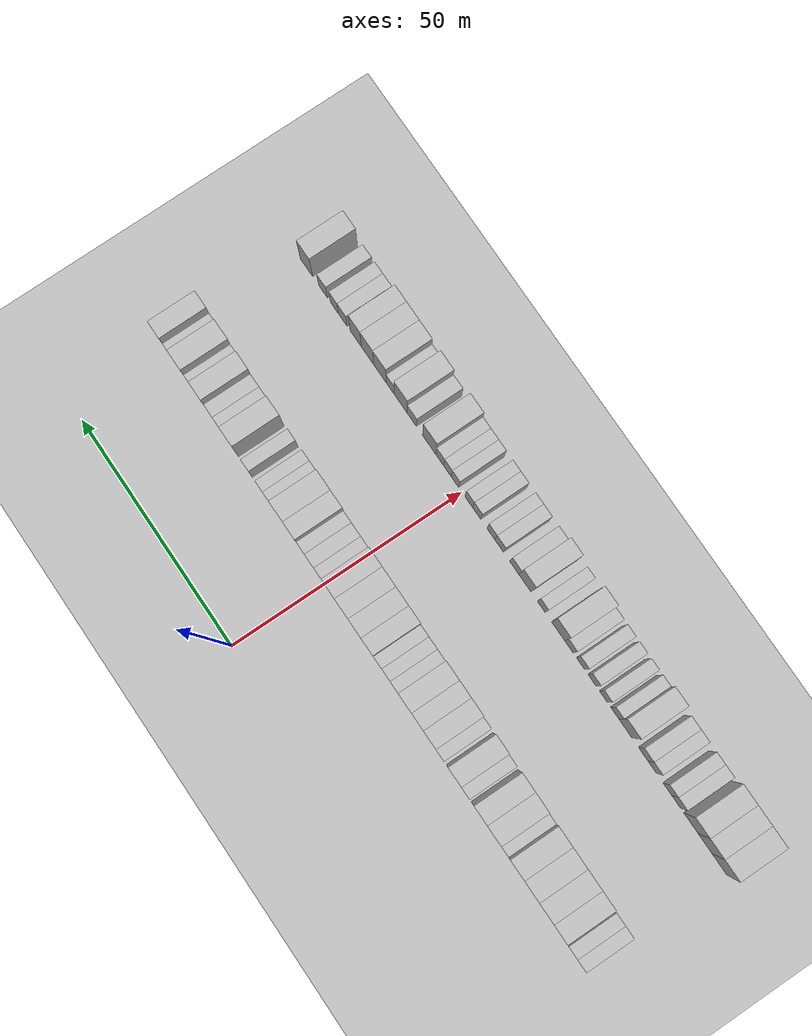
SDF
<sdf version="1.6">
 <world name="default">
  <include><name>ground_plane_1</name><uri>model://HANNAS_ground_plane</uri></include>
  <include>
   <name>ground_plane_2</name>
   <uri>model://HANNAS_ground_plane</uri>
   <pose>100 0 0  0 0 0</pose>
  </include>
  <model name="building_38">
   <static>1</static>
   <pose>25.0000 -79.5354 0 0.000000 0.000000 0.000000</pose>
   <link name="link">
    <pose>0 0 3.00 0 0 0</pose>
    <collision name="collision"><geometry><box><size>10.0000 2.6020 6.0000</size></box></geometry></collision>
    <visual name="visual">
     <cast_shadows>0</cast_shadows>
     <geometry><box><size>10.0000 2.6020 6.0000</size></box></geometry>
     <material>
      <script>
       <uri>model://HANNAS_wall/materials/scripts</uri>
       <uri>model://HANNAS_wall/materials/textures</uri>
       <name>vrc/HANNAS_wall</name>
      </script>
     </material>
    </visual>
   </link>
  </model>
  <model name="building_39">
   <static>1</static>
   <pose>25.0000 -76.9047 0 0.000000 0.000000 0.000000</pose>
   <link name="link">
    <pose>0 0 3.00 0 0 0</pose>
    <collision name="collision"><geometry><box><size>10.0000 2.6593 6.0000</size></box></geometry></collision>
    <visual name="visual">
     <cast_shadows>0</cast_shadows>
     <geometry><box><size>10.0000 2.6593 6.0000</size></box></geometry>
     <material>
      <script>
       <uri>model://HANNAS_wall/materials/scripts</uri>
       <uri>model://HANNAS_wall/materials/textures</uri>
       <name>vrc/HANNAS_wall</name>
      </script>
     </material>
    </visual>
   </link>
  </model>
  <model name="building_40">
   <static>1</static>
   <pose>25.0000 -72.5668 0 0.000000 0.000000 0.000000</pose>
   <link name="link">
    <pose>0 0 4.50 0 0 0</pose>
    <collision name="collision"><geometry><box><size>10.0000 4.0165 9.0000</size></box></geometry></collision>
    <visual name="visual">
     <cast_shadows>0</cast_shadows>
     <geometry><box><size>10.0000 4.0165 9.0000</size></box></geometry>
     <material>
      <script>
       <uri>model://HANNAS_wall/materials/scripts</uri>
       <uri>model://HANNAS_wall/materials/textures</uri>
       <name>vrc/HANNAS_wall</name>
      </script>
     </material>
    </visual>
   </link>
  </model>
  <model name="building_41">
   <static>1</static>
   <pose>25.0000 -68.4101 0 0.000000 0.000000 0.000000</pose>
   <link name="link">
    <pose>0 0 4.50 0 0 0</pose>
    <collision name="collision"><geometry><box><size>10.0000 4.2969 9.0000</size></box></geometry></collision>
    <visual name="visual">
     <cast_shadows>0</cast_shadows>
     <geometry><box><size>10.0000 4.2969 9.0000</size></box></geometry>
     <material>
      <script>
       <uri>model://HANNAS_wall/materials/scripts</uri>
       <uri>model://HANNAS_wall/materials/textures</uri>
       <name>vrc/HANNAS_wall</name>
      </script>
     </material>
    </visual>
   </link>
  </model>
  <model name="building_42">
   <static>1</static>
   <pose>25.0000 -64.0627 0 0.000000 0.000000 0.000000</pose>
   <link name="link">
    <pose>0 0 4.50 0 0 0</pose>
    <collision name="collision"><geometry><box><size>10.0000 4.3979 9.0000</size></box></geometry></collision>
    <visual name="visual">
     <cast_shadows>0</cast_shadows>
     <geometry><box><size>10.0000 4.3979 9.0000</size></box></geometry>
     <material>
      <script>
       <uri>model://HANNAS_wall/materials/scripts</uri>
       <uri>model://HANNAS_wall/materials/textures</uri>
       <name>vrc/HANNAS_wall</name>
      </script>
     </material>
    </visual>
   </link>
  </model>
  <model name="building_43">
   <static>1</static>
   <pose>25.0000 -59.7352 0 0.000000 0.000000 0.000000</pose>
   <link name="link">
    <pose>0 0 4.50 0 0 0</pose>
    <collision name="collision"><geometry><box><size>10.0000 4.2573 9.0000</size></box></geometry></collision>
    <visual name="visual">
     <cast_shadows>0</cast_shadows>
     <geometry><box><size>10.0000 4.2573 9.0000</size></box></geometry>
     <material>
      <script>
       <uri>model://HANNAS_wall/materials/scripts</uri>
       <uri>model://HANNAS_wall/materials/textures</uri>
       <name>vrc/HANNAS_wall</name>
      </script>
     </material>
    </visual>
   </link>
  </model>
  <model name="building_44">
   <static>1</static>
   <pose>25.0000 -56.2948 0 0.000000 0.000000 0.000000</pose>
   <link name="link">
    <pose>0 0 3.00 0 0 0</pose>
    <collision name="collision"><geometry><box><size>10.0000 2.6233 6.0000</size></box></geometry></collision>
    <visual name="visual">
     <cast_shadows>0</cast_shadows>
     <geometry><box><size>10.0000 2.6233 6.0000</size></box></geometry>
     <material>
      <script>
       <uri>model://HANNAS_wall/materials/scripts</uri>
       <uri>model://HANNAS_wall/materials/textures</uri>
       <name>vrc/HANNAS_wall</name>
      </script>
     </material>
    </visual>
   </link>
  </model>
  <model name="building_45">
   <static>1</static>
   <pose>25.0000 -52.8796 0 0.000000 0.000000 0.000000</pose>
   <link name="link">
    <pose>0 0 4.50 0 0 0</pose>
    <collision name="collision"><geometry><box><size>10.0000 4.2071 9.0000</size></box></geometry></collision>
    <visual name="visual">
     <cast_shadows>0</cast_shadows>
     <geometry><box><size>10.0000 4.2071 9.0000</size></box></geometry>
     <material>
      <script>
       <uri>model://HANNAS_wall/materials/scripts</uri>
       <uri>model://HANNAS_wall/materials/textures</uri>
       <name>vrc/HANNAS_wall</name>
      </script>
     </material>
    </visual>
   </link>
  </model>
  <model name="building_46">
   <static>1</static>
   <pose>25.0000 -48.7759 0 0.000000 0.000000 0.000000</pose>
   <link name="link">
    <pose>0 0 4.50 0 0 0</pose>
    <collision name="collision"><geometry><box><size>10.0000 4.0003 9.0000</size></box></geometry></collision>
    <visual name="visual">
     <cast_shadows>0</cast_shadows>
     <geometry><box><size>10.0000 4.0003 9.0000</size></box></geometry>
     <material>
      <script>
       <uri>model://HANNAS_wall/materials/scripts</uri>
       <uri>model://HANNAS_wall/materials/textures</uri>
       <name>vrc/HANNAS_wall</name>
      </script>
     </material>
    </visual>
   </link>
  </model>
  <model name="building_47">
   <static>1</static>
   <pose>25.0000 -44.3915 0 0.000000 0.000000 0.000000</pose>
   <link name="link">
    <pose>0 0 3.00 0 0 0</pose>
    <collision name="collision"><geometry><box><size>10.0000 2.7683 6.0000</size></box></geometry></collision>
    <visual name="visual">
     <cast_shadows>0</cast_shadows>
     <geometry><box><size>10.0000 2.7683 6.0000</size></box></geometry>
     <material>
      <script>
       <uri>model://HANNAS_wall/materials/scripts</uri>
       <uri>model://HANNAS_wall/materials/textures</uri>
       <name>vrc/HANNAS_wall</name>
      </script>
     </material>
    </visual>
   </link>
  </model>
  <model name="building_48">
   <static>1</static>
   <pose>25.0000 -40.9824 0 0.000000 0.000000 0.000000</pose>
   <link name="link">
    <pose>0 0 4.50 0 0 0</pose>
    <collision name="collision"><geometry><box><size>10.0000 4.0500 9.0000</size></box></geometry></collision>
    <visual name="visual">
     <cast_shadows>0</cast_shadows>
     <geometry><box><size>10.0000 4.0500 9.0000</size></box></geometry>
     <material>
      <script>
       <uri>model://HANNAS_wall/materials/scripts</uri>
       <uri>model://HANNAS_wall/materials/textures</uri>
       <name>vrc/HANNAS_wall</name>
      </script>
     </material>
    </visual>
   </link>
  </model>
  <model name="building_49">
   <static>1</static>
   <pose>25.0000 -36.6390 0 0.000000 0.000000 0.000000</pose>
   <link name="link">
    <pose>0 0 3.00 0 0 0</pose>
    <collision name="collision"><geometry><box><size>10.0000 2.6367 6.0000</size></box></geometry></collision>
    <visual name="visual">
     <cast_shadows>0</cast_shadows>
     <geometry><box><size>10.0000 2.6367 6.0000</size></box></geometry>
     <material>
      <script>
       <uri>model://HANNAS_wall/materials/scripts</uri>
       <uri>model://HANNAS_wall/materials/textures</uri>
       <name>vrc/HANNAS_wall</name>
      </script>
     </material>
    </visual>
   </link>
  </model>
  <model name="building_50">
   <static>1</static>
   <pose>25.0000 -33.4120 0 0.000000 0.000000 0.000000</pose>
   <link name="link">
    <pose>0 0 4.50 0 0 0</pose>
    <collision name="collision"><geometry><box><size>10.0000 3.8174 9.0000</size></box></geometry></collision>
    <visual name="visual">
     <cast_shadows>0</cast_shadows>
     <geometry><box><size>10.0000 3.8174 9.0000</size></box></geometry>
     <material>
      <script>
       <uri>model://HANNAS_wall/materials/scripts</uri>
       <uri>model://HANNAS_wall/materials/textures</uri>
       <name>vrc/HANNAS_wall</name>
      </script>
     </material>
    </visual>
   </link>
  </model>
  <model name="building_51">
   <static>1</static>
   <pose>25.0000 -29.6957 0 0.000000 0.000000 0.000000</pose>
   <link name="link">
    <pose>0 0 4.50 0 0 0</pose>
    <collision name="collision"><geometry><box><size>10.0000 3.6152 9.0000</size></box></geometry></collision>
    <visual name="visual">
     <cast_shadows>0</cast_shadows>
     <geometry><box><size>10.0000 3.6152 9.0000</size></box></geometry>
     <material>
      <script>
       <uri>model://HANNAS_wall/materials/scripts</uri>
       <uri>model://HANNAS_wall/materials/textures</uri>
       <name>vrc/HANNAS_wall</name>
      </script>
     </material>
    </visual>
   </link>
  </model>
  <model name="building_52">
   <static>1</static>
   <pose>25.0000 -25.8387 0 0.000000 0.000000 0.000000</pose>
   <link name="link">
    <pose>0 0 4.50 0 0 0</pose>
    <collision name="collision"><geometry><box><size>10.0000 4.0989 9.0000</size></box></geometry></collision>
    <visual name="visual">
     <cast_shadows>0</cast_shadows>
     <geometry><box><size>10.0000 4.0989 9.0000</size></box></geometry>
     <material>
      <script>
       <uri>model://HANNAS_wall/materials/scripts</uri>
       <uri>model://HANNAS_wall/materials/textures</uri>
       <name>vrc/HANNAS_wall</name>
      </script>
     </material>
    </visual>
   </link>
  </model>
  <model name="building_53">
   <static>1</static>
   <pose>25.0000 -22.5500 0 0.000000 0.000000 0.000000</pose>
   <link name="link">
    <pose>0 0 3.00 0 0 0</pose>
    <collision name="collision"><geometry><box><size>10.0000 2.4784 6.0000</size></box></geometry></collision>
    <visual name="visual">
     <cast_shadows>0</cast_shadows>
     <geometry><box><size>10.0000 2.4784 6.0000</size></box></geometry>
     <material>
      <script>
       <uri>model://HANNAS_wall/materials/scripts</uri>
       <uri>model://HANNAS_wall/materials/textures</uri>
       <name>vrc/HANNAS_wall</name>
      </script>
     </material>
    </visual>
   </link>
  </model>
  <model name="building_54">
   <static>1</static>
   <pose>25.0000 -19.9848 0 0.000000 0.000000 0.000000</pose>
   <link name="link">
    <pose>0 0 3.00 0 0 0</pose>
    <collision name="collision"><geometry><box><size>10.0000 2.6522 6.0000</size></box></geometry></collision>
    <visual name="visual">
     <cast_shadows>0</cast_shadows>
     <geometry><box><size>10.0000 2.6522 6.0000</size></box></geometry>
     <material>
      <script>
       <uri>model://HANNAS_wall/materials/scripts</uri>
       <uri>model://HANNAS_wall/materials/textures</uri>
       <name>vrc/HANNAS_wall</name>
      </script>
     </material>
    </visual>
   </link>
  </model>
  <model name="building_55">
   <static>1</static>
   <pose>25.0000 -17.3643 0 0.000000 0.000000 0.000000</pose>
   <link name="link">
    <pose>0 0 3.00 0 0 0</pose>
    <collision name="collision"><geometry><box><size>10.0000 2.5887 6.0000</size></box></geometry></collision>
    <visual name="visual">
     <cast_shadows>0</cast_shadows>
     <geometry><box><size>10.0000 2.5887 6.0000</size></box></geometry>
     <material>
      <script>
       <uri>model://HANNAS_wall/materials/scripts</uri>
       <uri>model://HANNAS_wall/materials/textures</uri>
       <name>vrc/HANNAS_wall</name>
      </script>
     </material>
    </visual>
   </link>
  </model>
  <model name="building_56">
   <static>1</static>
   <pose>25.0000 -14.2128 0 0.000000 0.000000 0.000000</pose>
   <link name="link">
    <pose>0 0 4.50 0 0 0</pose>
    <collision name="collision"><geometry><box><size>10.0000 3.7143 9.0000</size></box></geometry></collision>
    <visual name="visual">
     <cast_shadows>0</cast_shadows>
     <geometry><box><size>10.0000 3.7143 9.0000</size></box></geometry>
     <material>
      <script>
       <uri>model://HANNAS_wall/materials/scripts</uri>
       <uri>model://HANNAS_wall/materials/textures</uri>
       <name>vrc/HANNAS_wall</name>
      </script>
     </material>
    </visual>
   </link>
  </model>
  <model name="building_57">
   <static>1</static>
   <pose>25.0000 -10.3668 0 0.000000 0.000000 0.000000</pose>
   <link name="link">
    <pose>0 0 4.50 0 0 0</pose>
    <collision name="collision"><geometry><box><size>10.0000 3.9776 9.0000</size></box></geometry></collision>
    <visual name="visual">
     <cast_shadows>0</cast_shadows>
     <geometry><box><size>10.0000 3.9776 9.0000</size></box></geometry>
     <material>
      <script>
       <uri>model://HANNAS_wall/materials/scripts</uri>
       <uri>model://HANNAS_wall/materials/textures</uri>
       <name>vrc/HANNAS_wall</name>
      </script>
     </material>
    </visual>
   </link>
  </model>
  <model name="building_58">
   <static>1</static>
   <pose>25.0000 -6.2731 0 0.000000 0.000000 0.000000</pose>
   <link name="link">
    <pose>0 0 4.50 0 0 0</pose>
    <collision name="collision"><geometry><box><size>10.0000 4.2100 9.0000</size></box></geometry></collision>
    <visual name="visual">
     <cast_shadows>0</cast_shadows>
     <geometry><box><size>10.0000 4.2100 9.0000</size></box></geometry>
     <material>
      <script>
       <uri>model://HANNAS_wall/materials/scripts</uri>
       <uri>model://HANNAS_wall/materials/textures</uri>
       <name>vrc/HANNAS_wall</name>
      </script>
     </material>
    </visual>
   </link>
  </model>
  <model name="building_59">
   <static>1</static>
   <pose>25.0000 -2.0743 0 0.000000 0.000000 0.000000</pose>
   <link name="link">
    <pose>0 0 4.50 0 0 0</pose>
    <collision name="collision"><geometry><box><size>10.0000 4.1874 9.0000</size></box></geometry></collision>
    <visual name="visual">
     <cast_shadows>0</cast_shadows>
     <geometry><box><size>10.0000 4.1874 9.0000</size></box></geometry>
     <material>
      <script>
       <uri>model://HANNAS_wall/materials/scripts</uri>
       <uri>model://HANNAS_wall/materials/textures</uri>
       <name>vrc/HANNAS_wall</name>
      </script>
     </material>
    </visual>
   </link>
  </model>
  <model name="building_60">
   <static>1</static>
   <pose>25.0000 1.3728 0 0.000000 0.000000 0.000000</pose>
   <link name="link">
    <pose>0 0 3.00 0 0 0</pose>
    <collision name="collision"><geometry><box><size>10.0000 2.7069 6.0000</size></box></geometry></collision>
    <visual name="visual">
     <cast_shadows>0</cast_shadows>
     <geometry><box><size>10.0000 2.7069 6.0000</size></box></geometry>
     <material>
      <script>
       <uri>model://HANNAS_wall/materials/scripts</uri>
       <uri>model://HANNAS_wall/materials/textures</uri>
       <name>vrc/HANNAS_wall</name>
      </script>
     </material>
    </visual>
   </link>
  </model>
  <model name="building_61">
   <static>1</static>
   <pose>25.0000 4.1991 0 0.000000 0.000000 0.000000</pose>
   <link name="link">
    <pose>0 0 3.00 0 0 0</pose>
    <collision name="collision"><geometry><box><size>10.0000 2.9457 6.0000</size></box></geometry></collision>
    <visual name="visual">
     <cast_shadows>0</cast_shadows>
     <geometry><box><size>10.0000 2.9457 6.0000</size></box></geometry>
     <material>
      <script>
       <uri>model://HANNAS_wall/materials/scripts</uri>
       <uri>model://HANNAS_wall/materials/textures</uri>
       <name>vrc/HANNAS_wall</name>
      </script>
     </material>
    </visual>
   </link>
  </model>
  <model name="building_62">
   <static>1</static>
   <pose>25.0000 6.9556 0 0.000000 0.000000 0.000000</pose>
   <link name="link">
    <pose>0 0 3.00 0 0 0</pose>
    <collision name="collision"><geometry><box><size>10.0000 2.5673 6.0000</size></box></geometry></collision>
    <visual name="visual">
     <cast_shadows>0</cast_shadows>
     <geometry><box><size>10.0000 2.5673 6.0000</size></box></geometry>
     <material>
      <script>
       <uri>model://HANNAS_wall/materials/scripts</uri>
       <uri>model://HANNAS_wall/materials/textures</uri>
       <name>vrc/HANNAS_wall</name>
      </script>
     </material>
    </visual>
   </link>
  </model>
  <model name="building_63">
   <static>1</static>
   <pose>25.0000 10.1472 0 0.000000 0.000000 0.000000</pose>
   <link name="link">
    <pose>0 0 4.50 0 0 0</pose>
    <collision name="collision"><geometry><box><size>10.0000 3.8159 9.0000</size></box></geometry></collision>
    <visual name="visual">
     <cast_shadows>0</cast_shadows>
     <geometry><box><size>10.0000 3.8159 9.0000</size></box></geometry>
     <material>
      <script>
       <uri>model://HANNAS_wall/materials/scripts</uri>
       <uri>model://HANNAS_wall/materials/textures</uri>
       <name>vrc/HANNAS_wall</name>
      </script>
     </material>
    </visual>
   </link>
  </model>
  <model name="building_64">
   <static>1</static>
   <pose>25.0000 14.2762 0 0.000000 0.000000 0.000000</pose>
   <link name="link">
    <pose>0 0 4.50 0 0 0</pose>
    <collision name="collision"><geometry><box><size>10.0000 4.4421 9.0000</size></box></geometry></collision>
    <visual name="visual">
     <cast_shadows>0</cast_shadows>
     <geometry><box><size>10.0000 4.4421 9.0000</size></box></geometry>
     <material>
      <script>
       <uri>model://HANNAS_wall/materials/scripts</uri>
       <uri>model://HANNAS_wall/materials/textures</uri>
       <name>vrc/HANNAS_wall</name>
      </script>
     </material>
    </visual>
   </link>
  </model>
  <model name="building_65">
   <static>1</static>
   <pose>25.0000 17.7818 0 0.000000 0.000000 0.000000</pose>
   <link name="link">
    <pose>0 0 3.00 0 0 0</pose>
    <collision name="collision"><geometry><box><size>10.0000 2.5691 6.0000</size></box></geometry></collision>
    <visual name="visual">
     <cast_shadows>0</cast_shadows>
     <geometry><box><size>10.0000 2.5691 6.0000</size></box></geometry>
     <material>
      <script>
       <uri>model://HANNAS_wall/materials/scripts</uri>
       <uri>model://HANNAS_wall/materials/textures</uri>
       <name>vrc/HANNAS_wall</name>
      </script>
     </material>
    </visual>
   </link>
  </model>
  <model name="building_66">
   <static>1</static>
   <pose>25.0000 20.2902 0 0.000000 0.000000 0.000000</pose>
   <link name="link">
    <pose>0 0 3.00 0 0 0</pose>
    <collision name="collision"><geometry><box><size>10.0000 2.4477 6.0000</size></box></geometry></collision>
    <visual name="visual">
     <cast_shadows>0</cast_shadows>
     <geometry><box><size>10.0000 2.4477 6.0000</size></box></geometry>
     <material>
      <script>
       <uri>model://HANNAS_wall/materials/scripts</uri>
       <uri>model://HANNAS_wall/materials/textures</uri>
       <name>vrc/HANNAS_wall</name>
      </script>
     </material>
    </visual>
   </link>
  </model>
  <model name="building_67">
   <static>1</static>
   <pose>25.0000 24.8181 0 0.000000 0.000000 0.000000</pose>
   <link name="link">
    <pose>0 0 3.00 0 0 0</pose>
    <collision name="collision"><geometry><box><size>10.0000 2.6080 6.0000</size></box></geometry></collision>
    <visual name="visual">
     <cast_shadows>0</cast_shadows>
     <geometry><box><size>10.0000 2.6080 6.0000</size></box></geometry>
     <material>
      <script>
       <uri>model://HANNAS_wall/materials/scripts</uri>
       <uri>model://HANNAS_wall/materials/textures</uri>
       <name>vrc/HANNAS_wall</name>
      </script>
     </material>
    </visual>
   </link>
  </model>
  <model name="building_68">
   <static>1</static>
   <pose>25.0000 30.2400 0 0.000000 0.000000 0.000000</pose>
   <link name="link">
    <pose>0 0 4.50 0 0 0</pose>
    <collision name="collision"><geometry><box><size>10.0000 4.2359 9.0000</size></box></geometry></collision>
    <visual name="visual">
     <cast_shadows>0</cast_shadows>
     <geometry><box><size>10.0000 4.2359 9.0000</size></box></geometry>
     <material>
      <script>
       <uri>model://HANNAS_wall/materials/scripts</uri>
       <uri>model://HANNAS_wall/materials/textures</uri>
       <name>vrc/HANNAS_wall</name>
      </script>
     </material>
    </visual>
   </link>
  </model>
  <model name="building_69">
   <static>1</static>
   <pose>25.0000 33.8242 0 0.000000 0.000000 0.000000</pose>
   <link name="link">
    <pose>0 0 3.00 0 0 0</pose>
    <collision name="collision"><geometry><box><size>10.0000 2.9326 6.0000</size></box></geometry></collision>
    <visual name="visual">
     <cast_shadows>0</cast_shadows>
     <geometry><box><size>10.0000 2.9326 6.0000</size></box></geometry>
     <material>
      <script>
       <uri>model://HANNAS_wall/materials/scripts</uri>
       <uri>model://HANNAS_wall/materials/textures</uri>
       <name>vrc/HANNAS_wall</name>
      </script>
     </material>
    </visual>
   </link>
  </model>
  <model name="building_70">
   <static>1</static>
   <pose>25.0000 36.7032 0 0.000000 0.000000 0.000000</pose>
   <link name="link">
    <pose>0 0 3.00 0 0 0</pose>
    <collision name="collision"><geometry><box><size>10.0000 2.8254 6.0000</size></box></geometry></collision>
    <visual name="visual">
     <cast_shadows>0</cast_shadows>
     <geometry><box><size>10.0000 2.8254 6.0000</size></box></geometry>
     <material>
      <script>
       <uri>model://HANNAS_wall/materials/scripts</uri>
       <uri>model://HANNAS_wall/materials/textures</uri>
       <name>vrc/HANNAS_wall</name>
      </script>
     </material>
    </visual>
   </link>
  </model>
  <model name="building_71">
   <static>1</static>
   <pose>25.0000 40.1133 0 0.000000 0.000000 0.000000</pose>
   <link name="link">
    <pose>0 0 4.50 0 0 0</pose>
    <collision name="collision"><geometry><box><size>10.0000 3.9947 9.0000</size></box></geometry></collision>
    <visual name="visual">
     <cast_shadows>0</cast_shadows>
     <geometry><box><size>10.0000 3.9947 9.0000</size></box></geometry>
     <material>
      <script>
       <uri>model://HANNAS_wall/materials/scripts</uri>
       <uri>model://HANNAS_wall/materials/textures</uri>
       <name>vrc/HANNAS_wall</name>
      </script>
     </material>
    </visual>
   </link>
  </model>
  <model name="building_72">
   <static>1</static>
   <pose>25.0000 43.3792 0 0.000000 0.000000 0.000000</pose>
   <link name="link">
    <pose>0 0 3.00 0 0 0</pose>
    <collision name="collision"><geometry><box><size>10.0000 2.5372 6.0000</size></box></geometry></collision>
    <visual name="visual">
     <cast_shadows>0</cast_shadows>
     <geometry><box><size>10.0000 2.5372 6.0000</size></box></geometry>
     <material>
      <script>
       <uri>model://HANNAS_wall/materials/scripts</uri>
       <uri>model://HANNAS_wall/materials/textures</uri>
       <name>vrc/HANNAS_wall</name>
      </script>
     </material>
    </visual>
   </link>
  </model>
  <model name="building_73">
   <static>1</static>
   <pose>25.0000 46.8555 0 0.000000 0.000000 0.000000</pose>
   <link name="link">
    <pose>0 0 4.50 0 0 0</pose>
    <collision name="collision"><geometry><box><size>10.0000 4.4154 9.0000</size></box></geometry></collision>
    <visual name="visual">
     <cast_shadows>0</cast_shadows>
     <geometry><box><size>10.0000 4.4154 9.0000</size></box></geometry>
     <material>
      <script>
       <uri>model://HANNAS_wall/materials/scripts</uri>
       <uri>model://HANNAS_wall/materials/textures</uri>
       <name>vrc/HANNAS_wall</name>
      </script>
     </material>
    </visual>
   </link>
  </model>
  <model name="building_74">
   <static>1</static>
   <pose>25.0000 50.3216 0 0.000000 0.000000 0.000000</pose>
   <link name="link">
    <pose>0 0 3.00 0 0 0</pose>
    <collision name="collision"><geometry><box><size>10.0000 2.5167 6.0000</size></box></geometry></collision>
    <visual name="visual">
     <cast_shadows>0</cast_shadows>
     <geometry><box><size>10.0000 2.5167 6.0000</size></box></geometry>
     <material>
      <script>
       <uri>model://HANNAS_wall/materials/scripts</uri>
       <uri>model://HANNAS_wall/materials/textures</uri>
       <name>vrc/HANNAS_wall</name>
      </script>
     </material>
    </visual>
   </link>
  </model>
  <model name="building_75">
   <static>1</static>
   <pose>25.0000 53.4678 0 0.000000 0.000000 0.000000</pose>
   <link name="link">
    <pose>0 0 4.50 0 0 0</pose>
    <collision name="collision"><geometry><box><size>10.0000 3.7756 9.0000</size></box></geometry></collision>
    <visual name="visual">
     <cast_shadows>0</cast_shadows>
     <geometry><box><size>10.0000 3.7756 9.0000</size></box></geometry>
     <material>
      <script>
       <uri>model://HANNAS_wall/materials/scripts</uri>
       <uri>model://HANNAS_wall/materials/textures</uri>
       <name>vrc/HANNAS_wall</name>
      </script>
     </material>
    </visual>
   </link>
  </model>
  <model name="building_150">
   <static>1</static>
   <pose>55.0000 -80.1791 0 0.000000 0.000000 0.000000</pose>
   <link name="link">
    <pose>0 0 4.50 0 0 0</pose>
    <collision name="collision"><geometry><box><size>10.0000 4.4902 9.0000</size></box></geometry></collision>
    <visual name="visual">
     <cast_shadows>0</cast_shadows>
     <geometry><box><size>10.0000 4.4902 9.0000</size></box></geometry>
     <material>
      <script>
       <uri>model://HANNAS_wall/materials/scripts</uri>
       <uri>model://HANNAS_wall/materials/textures</uri>
       <name>vrc/HANNAS_wall</name>
      </script>
     </material>
    </visual>
   </link>
  </model>
  <model name="building_151">
   <static>1</static>
   <pose>55.0000 -75.8192 0 0.000000 0.000000 0.000000</pose>
   <link name="link">
    <pose>0 0 4.50 0 0 0</pose>
    <collision name="collision"><geometry><box><size>10.0000 4.2296 9.0000</size></box></geometry></collision>
    <visual name="visual">
     <cast_shadows>0</cast_shadows>
     <geometry><box><size>10.0000 4.2296 9.0000</size></box></geometry>
     <material>
      <script>
       <uri>model://HANNAS_wall/materials/scripts</uri>
       <uri>model://HANNAS_wall/materials/textures</uri>
       <name>vrc/HANNAS_wall</name>
      </script>
     </material>
    </visual>
   </link>
  </model>
  <model name="building_152">
   <static>1</static>
   <pose>55.0000 -71.5585 0 0.000000 0.000000 0.000000</pose>
   <link name="link">
    <pose>0 0 4.50 0 0 0</pose>
    <collision name="collision"><geometry><box><size>10.0000 4.2917 9.0000</size></box></geometry></collision>
    <visual name="visual">
     <cast_shadows>0</cast_shadows>
     <geometry><box><size>10.0000 4.2917 9.0000</size></box></geometry>
     <material>
      <script>
       <uri>model://HANNAS_wall/materials/scripts</uri>
       <uri>model://HANNAS_wall/materials/textures</uri>
       <name>vrc/HANNAS_wall</name>
      </script>
     </material>
    </visual>
   </link>
  </model>
  <model name="building_153">
   <static>1</static>
   <pose>55.0000 -67.0570 0 0.000000 0.000000 0.000000</pose>
   <link name="link">
    <pose>0 0 3.00 0 0 0</pose>
    <collision name="collision"><geometry><box><size>10.0000 2.7115 6.0000</size></box></geometry></collision>
    <visual name="visual">
     <cast_shadows>0</cast_shadows>
     <geometry><box><size>10.0000 2.7115 6.0000</size></box></geometry>
     <material>
      <script>
       <uri>model://HANNAS_wall/materials/scripts</uri>
       <uri>model://HANNAS_wall/materials/textures</uri>
       <name>vrc/HANNAS_wall</name>
      </script>
     </material>
    </visual>
   </link>
  </model>
  <model name="building_154">
   <static>1</static>
   <pose>55.0000 -64.4018 0 0.000000 0.000000 0.000000</pose>
   <link name="link">
    <pose>0 0 3.00 0 0 0</pose>
    <collision name="collision"><geometry><box><size>10.0000 2.5989 6.0000</size></box></geometry></collision>
    <visual name="visual">
     <cast_shadows>0</cast_shadows>
     <geometry><box><size>10.0000 2.5989 6.0000</size></box></geometry>
     <material>
      <script>
       <uri>model://HANNAS_wall/materials/scripts</uri>
       <uri>model://HANNAS_wall/materials/textures</uri>
       <name>vrc/HANNAS_wall</name>
      </script>
     </material>
    </visual>
   </link>
  </model>
  <model name="building_155">
   <static>1</static>
   <pose>55.0000 -59.7702 0 0.000000 0.000000 0.000000</pose>
   <link name="link">
    <pose>0 0 3.00 0 0 0</pose>
    <collision name="collision"><geometry><box><size>10.0000 2.6642 6.0000</size></box></geometry></collision>
    <visual name="visual">
     <cast_shadows>0</cast_shadows>
     <geometry><box><size>10.0000 2.6642 6.0000</size></box></geometry>
     <material>
      <script>
       <uri>model://HANNAS_wall/materials/scripts</uri>
       <uri>model://HANNAS_wall/materials/textures</uri>
       <name>vrc/HANNAS_wall</name>
      </script>
     </material>
    </visual>
   </link>
  </model>
  <model name="building_156">
   <static>1</static>
   <pose>55.0000 -56.9979 0 0.000000 0.000000 0.000000</pose>
   <link name="link">
    <pose>0 0 3.00 0 0 0</pose>
    <collision name="collision"><geometry><box><size>10.0000 2.8803 6.0000</size></box></geometry></collision>
    <visual name="visual">
     <cast_shadows>0</cast_shadows>
     <geometry><box><size>10.0000 2.8803 6.0000</size></box></geometry>
     <material>
      <script>
       <uri>model://HANNAS_wall/materials/scripts</uri>
       <uri>model://HANNAS_wall/materials/textures</uri>
       <name>vrc/HANNAS_wall</name>
      </script>
     </material>
    </visual>
   </link>
  </model>
  <model name="building_157">
   <static>1</static>
   <pose>55.0000 -51.5077 0 0.000000 0.000000 0.000000</pose>
   <link name="link">
    <pose>0 0 4.50 0 0 0</pose>
    <collision name="collision"><geometry><box><size>10.0000 4.1001 9.0000</size></box></geometry></collision>
    <visual name="visual">
     <cast_shadows>0</cast_shadows>
     <geometry><box><size>10.0000 4.1001 9.0000</size></box></geometry>
     <material>
      <script>
       <uri>model://HANNAS_wall/materials/scripts</uri>
       <uri>model://HANNAS_wall/materials/textures</uri>
       <name>vrc/HANNAS_wall</name>
      </script>
     </material>
    </visual>
   </link>
  </model>
  <model name="building_158">
   <static>1</static>
   <pose>55.0000 -48.2311 0 0.000000 0.000000 0.000000</pose>
   <link name="link">
    <pose>0 0 3.00 0 0 0</pose>
    <collision name="collision"><geometry><box><size>10.0000 2.4531 6.0000</size></box></geometry></collision>
    <visual name="visual">
     <cast_shadows>0</cast_shadows>
     <geometry><box><size>10.0000 2.4531 6.0000</size></box></geometry>
     <material>
      <script>
       <uri>model://HANNAS_wall/materials/scripts</uri>
       <uri>model://HANNAS_wall/materials/textures</uri>
       <name>vrc/HANNAS_wall</name>
      </script>
     </material>
    </visual>
   </link>
  </model>
  <model name="building_159">
   <static>1</static>
   <pose>55.0000 -44.7617 0 0.000000 0.000000 0.000000</pose>
   <link name="link">
    <pose>0 0 3.00 0 0 0</pose>
    <collision name="collision"><geometry><box><size>10.0000 2.4856 6.0000</size></box></geometry></collision>
    <visual name="visual">
     <cast_shadows>0</cast_shadows>
     <geometry><box><size>10.0000 2.4856 6.0000</size></box></geometry>
     <material>
      <script>
       <uri>model://HANNAS_wall/materials/scripts</uri>
       <uri>model://HANNAS_wall/materials/textures</uri>
       <name>vrc/HANNAS_wall</name>
      </script>
     </material>
    </visual>
   </link>
  </model>
  <model name="building_160">
   <static>1</static>
   <pose>55.0000 -41.2439 0 0.000000 0.000000 0.000000</pose>
   <link name="link">
    <pose>0 0 3.00 0 0 0</pose>
    <collision name="collision"><geometry><box><size>10.0000 2.5501 6.0000</size></box></geometry></collision>
    <visual name="visual">
     <cast_shadows>0</cast_shadows>
     <geometry><box><size>10.0000 2.5501 6.0000</size></box></geometry>
     <material>
      <script>
       <uri>model://HANNAS_wall/materials/scripts</uri>
       <uri>model://HANNAS_wall/materials/textures</uri>
       <name>vrc/HANNAS_wall</name>
      </script>
     </material>
    </visual>
   </link>
  </model>
  <model name="building_161">
   <static>1</static>
   <pose>55.0000 -37.6755 0 0.000000 0.000000 0.000000</pose>
   <link name="link">
    <pose>0 0 3.00 0 0 0</pose>
    <collision name="collision"><geometry><box><size>10.0000 2.5868 6.0000</size></box></geometry></collision>
    <visual name="visual">
     <cast_shadows>0</cast_shadows>
     <geometry><box><size>10.0000 2.5868 6.0000</size></box></geometry>
     <material>
      <script>
       <uri>model://HANNAS_wall/materials/scripts</uri>
       <uri>model://HANNAS_wall/materials/textures</uri>
       <name>vrc/HANNAS_wall</name>
      </script>
     </material>
    </visual>
   </link>
  </model>
  <model name="building_162">
   <static>1</static>
   <pose>55.0000 -34.0418 0 0.000000 0.000000 0.000000</pose>
   <link name="link">
    <pose>0 0 3.00 0 0 0</pose>
    <collision name="collision"><geometry><box><size>10.0000 2.6805 6.0000</size></box></geometry></collision>
    <visual name="visual">
     <cast_shadows>0</cast_shadows>
     <geometry><box><size>10.0000 2.6805 6.0000</size></box></geometry>
     <material>
      <script>
       <uri>model://HANNAS_wall/materials/scripts</uri>
       <uri>model://HANNAS_wall/materials/textures</uri>
       <name>vrc/HANNAS_wall</name>
      </script>
     </material>
    </visual>
   </link>
  </model>
  <model name="building_163">
   <static>1</static>
   <pose>55.0000 -30.6509 0 0.000000 0.000000 0.000000</pose>
   <link name="link">
    <pose>0 0 4.50 0 0 0</pose>
    <collision name="collision"><geometry><box><size>10.0000 4.1012 9.0000</size></box></geometry></collision>
    <visual name="visual">
     <cast_shadows>0</cast_shadows>
     <geometry><box><size>10.0000 4.1012 9.0000</size></box></geometry>
     <material>
      <script>
       <uri>model://HANNAS_wall/materials/scripts</uri>
       <uri>model://HANNAS_wall/materials/textures</uri>
       <name>vrc/HANNAS_wall</name>
      </script>
     </material>
    </visual>
   </link>
  </model>
  <model name="building_164">
   <static>1</static>
   <pose>55.0000 -25.3628 0 0.000000 0.000000 0.000000</pose>
   <link name="link">
    <pose>0 0 3.00 0 0 0</pose>
    <collision name="collision"><geometry><box><size>10.0000 2.4750 6.0000</size></box></geometry></collision>
    <visual name="visual">
     <cast_shadows>0</cast_shadows>
     <geometry><box><size>10.0000 2.4750 6.0000</size></box></geometry>
     <material>
      <script>
       <uri>model://HANNAS_wall/materials/scripts</uri>
       <uri>model://HANNAS_wall/materials/textures</uri>
       <name>vrc/HANNAS_wall</name>
      </script>
     </material>
    </visual>
   </link>
  </model>
  <model name="building_165">
   <static>1</static>
   <pose>55.0000 -20.2256 0 0.000000 0.000000 0.000000</pose>
   <link name="link">
    <pose>0 0 4.50 0 0 0</pose>
    <collision name="collision"><geometry><box><size>10.0000 3.7995 9.0000</size></box></geometry></collision>
    <visual name="visual">
     <cast_shadows>0</cast_shadows>
     <geometry><box><size>10.0000 3.7995 9.0000</size></box></geometry>
     <material>
      <script>
       <uri>model://HANNAS_wall/materials/scripts</uri>
       <uri>model://HANNAS_wall/materials/textures</uri>
       <name>vrc/HANNAS_wall</name>
      </script>
     </material>
    </visual>
   </link>
  </model>
  <model name="building_166">
   <static>1</static>
   <pose>55.0000 -16.8553 0 0.000000 0.000000 0.000000</pose>
   <link name="link">
    <pose>0 0 3.00 0 0 0</pose>
    <collision name="collision"><geometry><box><size>10.0000 2.9411 6.0000</size></box></geometry></collision>
    <visual name="visual">
     <cast_shadows>0</cast_shadows>
     <geometry><box><size>10.0000 2.9411 6.0000</size></box></geometry>
     <material>
      <script>
       <uri>model://HANNAS_wall/materials/scripts</uri>
       <uri>model://HANNAS_wall/materials/textures</uri>
       <name>vrc/HANNAS_wall</name>
      </script>
     </material>
    </visual>
   </link>
  </model>
  <model name="building_167">
   <static>1</static>
   <pose>55.0000 -12.0189 0 0.000000 0.000000 0.000000</pose>
   <link name="link">
    <pose>0 0 3.00 0 0 0</pose>
    <collision name="collision"><geometry><box><size>10.0000 2.7317 6.0000</size></box></geometry></collision>
    <visual name="visual">
     <cast_shadows>0</cast_shadows>
     <geometry><box><size>10.0000 2.7317 6.0000</size></box></geometry>
     <material>
      <script>
       <uri>model://HANNAS_wall/materials/scripts</uri>
       <uri>model://HANNAS_wall/materials/textures</uri>
       <name>vrc/HANNAS_wall</name>
      </script>
     </material>
    </visual>
   </link>
  </model>
  <model name="building_168">
   <static>1</static>
   <pose>55.0000 -9.3987 0 0.000000 0.000000 0.000000</pose>
   <link name="link">
    <pose>0 0 3.00 0 0 0</pose>
    <collision name="collision"><geometry><box><size>10.0000 2.5086 6.0000</size></box></geometry></collision>
    <visual name="visual">
     <cast_shadows>0</cast_shadows>
     <geometry><box><size>10.0000 2.5086 6.0000</size></box></geometry>
     <material>
      <script>
       <uri>model://HANNAS_wall/materials/scripts</uri>
       <uri>model://HANNAS_wall/materials/textures</uri>
       <name>vrc/HANNAS_wall</name>
      </script>
     </material>
    </visual>
   </link>
  </model>
  <model name="building_169">
   <static>1</static>
   <pose>55.0000 -4.8514 0 0.000000 0.000000 0.000000</pose>
   <link name="link">
    <pose>0 0 3.00 0 0 0</pose>
    <collision name="collision"><geometry><box><size>10.0000 2.5859 6.0000</size></box></geometry></collision>
    <visual name="visual">
     <cast_shadows>0</cast_shadows>
     <geometry><box><size>10.0000 2.5859 6.0000</size></box></geometry>
     <material>
      <script>
       <uri>model://HANNAS_wall/materials/scripts</uri>
       <uri>model://HANNAS_wall/materials/textures</uri>
       <name>vrc/HANNAS_wall</name>
      </script>
     </material>
    </visual>
   </link>
  </model>
  <model name="building_170">
   <static>1</static>
   <pose>55.0000 -2.3210 0 0.000000 0.000000 0.000000</pose>
   <link name="link">
    <pose>0 0 3.00 0 0 0</pose>
    <collision name="collision"><geometry><box><size>10.0000 2.4750 6.0000</size></box></geometry></collision>
    <visual name="visual">
     <cast_shadows>0</cast_shadows>
     <geometry><box><size>10.0000 2.4750 6.0000</size></box></geometry>
     <material>
      <script>
       <uri>model://HANNAS_wall/materials/scripts</uri>
       <uri>model://HANNAS_wall/materials/textures</uri>
       <name>vrc/HANNAS_wall</name>
      </script>
     </material>
    </visual>
   </link>
  </model>
  <model name="building_171">
   <static>1</static>
   <pose>55.0000 2.1362 0 0.000000 0.000000 0.000000</pose>
   <link name="link">
    <pose>0 0 3.00 0 0 0</pose>
    <collision name="collision"><geometry><box><size>10.0000 2.4392 6.0000</size></box></geometry></collision>
    <visual name="visual">
     <cast_shadows>0</cast_shadows>
     <geometry><box><size>10.0000 2.4392 6.0000</size></box></geometry>
     <material>
      <script>
       <uri>model://HANNAS_wall/materials/scripts</uri>
       <uri>model://HANNAS_wall/materials/textures</uri>
       <name>vrc/HANNAS_wall</name>
      </script>
     </material>
    </visual>
   </link>
  </model>
  <model name="building_172">
   <static>1</static>
   <pose>55.0000 4.5849 0 0.000000 0.000000 0.000000</pose>
   <link name="link">
    <pose>0 0 3.00 0 0 0</pose>
    <collision name="collision"><geometry><box><size>10.0000 2.4583 6.0000</size></box></geometry></collision>
    <visual name="visual">
     <cast_shadows>0</cast_shadows>
     <geometry><box><size>10.0000 2.4583 6.0000</size></box></geometry>
     <material>
      <script>
       <uri>model://HANNAS_wall/materials/scripts</uri>
       <uri>model://HANNAS_wall/materials/textures</uri>
       <name>vrc/HANNAS_wall</name>
      </script>
     </material>
    </visual>
   </link>
  </model>
  <model name="building_173">
   <static>1</static>
   <pose>55.0000 7.0503 0 0.000000 0.000000 0.000000</pose>
   <link name="link">
    <pose>0 0 3.00 0 0 0</pose>
    <collision name="collision"><geometry><box><size>10.0000 2.4724 6.0000</size></box></geometry></collision>
    <visual name="visual">
     <cast_shadows>0</cast_shadows>
     <geometry><box><size>10.0000 2.4724 6.0000</size></box></geometry>
     <material>
      <script>
       <uri>model://HANNAS_wall/materials/scripts</uri>
       <uri>model://HANNAS_wall/materials/textures</uri>
       <name>vrc/HANNAS_wall</name>
      </script>
     </material>
    </visual>
   </link>
  </model>
  <model name="building_174">
   <static>1</static>
   <pose>55.0000 10.4318 0 0.000000 0.000000 0.000000</pose>
   <link name="link">
    <pose>0 0 4.50 0 0 0</pose>
    <collision name="collision"><geometry><box><size>10.0000 4.2906 9.0000</size></box></geometry></collision>
    <visual name="visual">
     <cast_shadows>0</cast_shadows>
     <geometry><box><size>10.0000 4.2906 9.0000</size></box></geometry>
     <material>
      <script>
       <uri>model://HANNAS_wall/materials/scripts</uri>
       <uri>model://HANNAS_wall/materials/textures</uri>
       <name>vrc/HANNAS_wall</name>
      </script>
     </material>
    </visual>
   </link>
  </model>
  <model name="building_175">
   <static>1</static>
   <pose>55.0000 16.0722 0 0.000000 0.000000 0.000000</pose>
   <link name="link">
    <pose>0 0 3.00 0 0 0</pose>
    <collision name="collision"><geometry><box><size>10.0000 2.9904 6.0000</size></box></geometry></collision>
    <visual name="visual">
     <cast_shadows>0</cast_shadows>
     <geometry><box><size>10.0000 2.9904 6.0000</size></box></geometry>
     <material>
      <script>
       <uri>model://HANNAS_wall/materials/scripts</uri>
       <uri>model://HANNAS_wall/materials/textures</uri>
       <name>vrc/HANNAS_wall</name>
      </script>
     </material>
    </visual>
   </link>
  </model>
  <model name="building_176">
   <static>1</static>
   <pose>55.0000 19.7162 0 0.000000 0.000000 0.000000</pose>
   <link name="link">
    <pose>0 0 4.50 0 0 0</pose>
    <collision name="collision"><geometry><box><size>10.0000 4.2974 9.0000</size></box></geometry></collision>
    <visual name="visual">
     <cast_shadows>0</cast_shadows>
     <geometry><box><size>10.0000 4.2974 9.0000</size></box></geometry>
     <material>
      <script>
       <uri>model://HANNAS_wall/materials/scripts</uri>
       <uri>model://HANNAS_wall/materials/textures</uri>
       <name>vrc/HANNAS_wall</name>
      </script>
     </material>
    </visual>
   </link>
  </model>
  <model name="building_177">
   <static>1</static>
   <pose>55.0000 23.1125 0 0.000000 0.000000 0.000000</pose>
   <link name="link">
    <pose>0 0 3.00 0 0 0</pose>
    <collision name="collision"><geometry><box><size>10.0000 2.4952 6.0000</size></box></geometry></collision>
    <visual name="visual">
     <cast_shadows>0</cast_shadows>
     <geometry><box><size>10.0000 2.4952 6.0000</size></box></geometry>
     <material>
      <script>
       <uri>model://HANNAS_wall/materials/scripts</uri>
       <uri>model://HANNAS_wall/materials/textures</uri>
       <name>vrc/HANNAS_wall</name>
      </script>
     </material>
    </visual>
   </link>
  </model>
  <model name="building_178">
   <static>1</static>
   <pose>55.0000 26.4484 0 0.000000 0.000000 0.000000</pose>
   <link name="link">
    <pose>0 0 4.50 0 0 0</pose>
    <collision name="collision"><geometry><box><size>10.0000 4.1767 9.0000</size></box></geometry></collision>
    <visual name="visual">
     <cast_shadows>0</cast_shadows>
     <geometry><box><size>10.0000 4.1767 9.0000</size></box></geometry>
     <material>
      <script>
       <uri>model://HANNAS_wall/materials/scripts</uri>
       <uri>model://HANNAS_wall/materials/textures</uri>
       <name>vrc/HANNAS_wall</name>
      </script>
     </material>
    </visual>
   </link>
  </model>
  <model name="building_179">
   <static>1</static>
   <pose>55.0000 30.5713 0 0.000000 0.000000 0.000000</pose>
   <link name="link">
    <pose>0 0 4.50 0 0 0</pose>
    <collision name="collision"><geometry><box><size>10.0000 4.0691 9.0000</size></box></geometry></collision>
    <visual name="visual">
     <cast_shadows>0</cast_shadows>
     <geometry><box><size>10.0000 4.0691 9.0000</size></box></geometry>
     <material>
      <script>
       <uri>model://HANNAS_wall/materials/scripts</uri>
       <uri>model://HANNAS_wall/materials/textures</uri>
       <name>vrc/HANNAS_wall</name>
      </script>
     </material>
    </visual>
   </link>
  </model>
  <model name="building_180">
   <static>1</static>
   <pose>55.0000 34.4489 0 0.000000 0.000000 0.000000</pose>
   <link name="link">
    <pose>0 0 4.50 0 0 0</pose>
    <collision name="collision"><geometry><box><size>10.0000 3.6861 9.0000</size></box></geometry></collision>
    <visual name="visual">
     <cast_shadows>0</cast_shadows>
     <geometry><box><size>10.0000 3.6861 9.0000</size></box></geometry>
     <material>
      <script>
       <uri>model://HANNAS_wall/materials/scripts</uri>
       <uri>model://HANNAS_wall/materials/textures</uri>
       <name>vrc/HANNAS_wall</name>
      </script>
     </material>
    </visual>
   </link>
  </model>
  <model name="building_181">
   <static>1</static>
   <pose>55.0000 38.7428 0 0.000000 0.000000 0.000000</pose>
   <link name="link">
    <pose>0 0 3.00 0 0 0</pose>
    <collision name="collision"><geometry><box><size>10.0000 2.9019 6.0000</size></box></geometry></collision>
    <visual name="visual">
     <cast_shadows>0</cast_shadows>
     <geometry><box><size>10.0000 2.9019 6.0000</size></box></geometry>
     <material>
      <script>
       <uri>model://HANNAS_wall/materials/scripts</uri>
       <uri>model://HANNAS_wall/materials/textures</uri>
       <name>vrc/HANNAS_wall</name>
      </script>
     </material>
    </visual>
   </link>
  </model>
  <model name="building_182">
   <static>1</static>
   <pose>55.0000 41.5082 0 0.000000 0.000000 0.000000</pose>
   <link name="link">
    <pose>0 0 3.00 0 0 0</pose>
    <collision name="collision"><geometry><box><size>10.0000 2.6288 6.0000</size></box></geometry></collision>
    <visual name="visual">
     <cast_shadows>0</cast_shadows>
     <geometry><box><size>10.0000 2.6288 6.0000</size></box></geometry>
     <material>
      <script>
       <uri>model://HANNAS_wall/materials/scripts</uri>
       <uri>model://HANNAS_wall/materials/textures</uri>
       <name>vrc/HANNAS_wall</name>
      </script>
     </material>
    </visual>
   </link>
  </model>
  <model name="building_183">
   <static>1</static>
   <pose>55.0000 45.2779 0 0.000000 0.000000 0.000000</pose>
   <link name="link">
    <pose>0 0 3.00 0 0 0</pose>
    <collision name="collision"><geometry><box><size>10.0000 2.9106 6.0000</size></box></geometry></collision>
    <visual name="visual">
     <cast_shadows>0</cast_shadows>
     <geometry><box><size>10.0000 2.9106 6.0000</size></box></geometry>
     <material>
      <script>
       <uri>model://HANNAS_wall/materials/scripts</uri>
       <uri>model://HANNAS_wall/materials/textures</uri>
       <name>vrc/HANNAS_wall</name>
      </script>
     </material>
    </visual>
   </link>
  </model>
  <model name="building_184">
   <static>1</static>
   <pose>55.0000 50.8037 0 0.000000 0.000000 0.000000</pose>
   <link name="link">
    <pose>0 0 4.50 0 0 0</pose>
    <collision name="collision"><geometry><box><size>10.0000 4.1410 9.0000</size></box></geometry></collision>
    <visual name="visual">
     <cast_shadows>0</cast_shadows>
     <geometry><box><size>10.0000 4.1410 9.0000</size></box></geometry>
     <material>
      <script>
       <uri>model://HANNAS_wall/materials/scripts</uri>
       <uri>model://HANNAS_wall/materials/textures</uri>
       <name>vrc/HANNAS_wall</name>
      </script>
     </material>
    </visual>
   </link>
  </model>
 </world>
</sdf>
